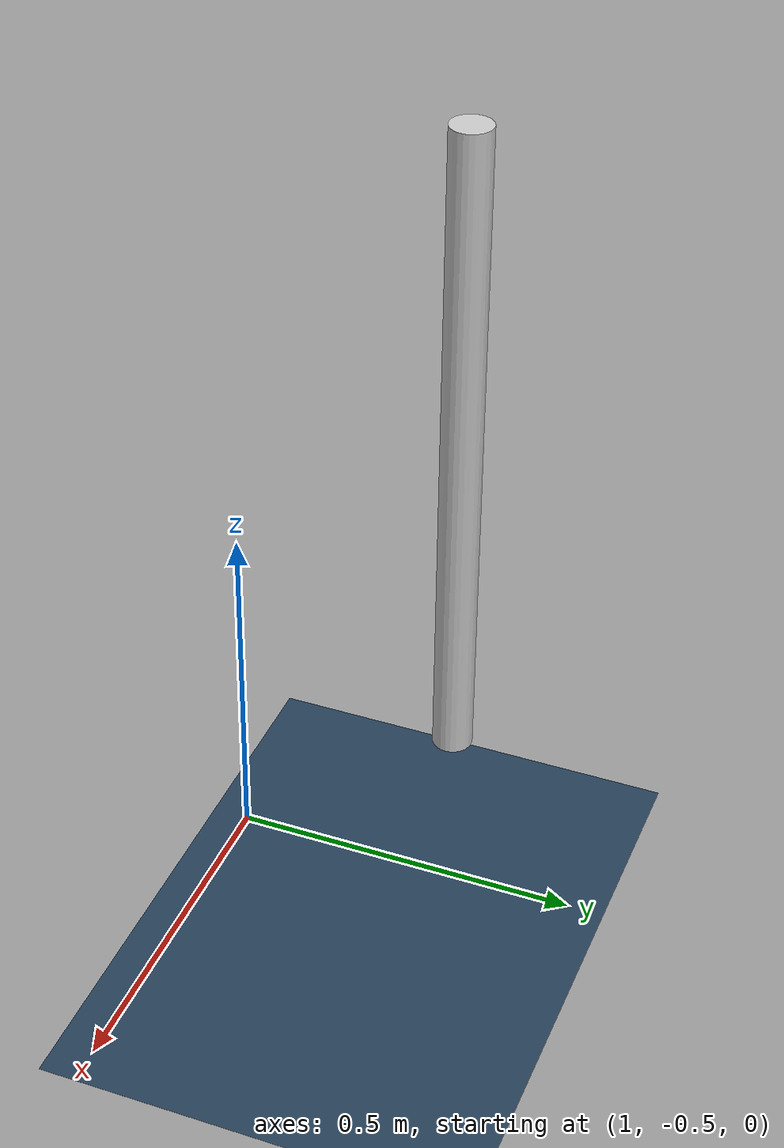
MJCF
<mujoco model="exoskeleton scene">
  <option gravity="0 0 -9.81" />
  <size nconmax="200" njmax="200" nstack="500000"/>
  <statistic center="0 0 1" extent="1.8"/>

  <visual>
    <headlight diffuse="0.6 0.6 0.6" ambient="0.3 0.3 0.3" specular="0 0 0"/>
    <rgba haze="0.15 0.25 0.35 1"/>
    <global azimuth="160" elevation="-20"/>
  </visual>

  <asset>
    <texture type="skybox" builtin="gradient" rgb1="0.3 0.5 0.7" rgb2="0 0 0" width="512" height="3072"/>
    <texture type="2d" name="groundplane" builtin="checker" mark="edge" rgb1="0.2 0.3 0.4" rgb2="0.1 0.2 0.3"
      markrgb="0.8 0.8 0.8" width="300" height="300"/>
    <material name="groundplane" texture="groundplane" texuniform="true" texrepeat="5 5" reflectance="0.2"/>
  </asset>

  <worldbody>
    <light pos="0 0 3.5" dir="0 0 -1" directional="true"/>
    <!-- 添加 friction 属性来增加地板的摩擦力 -->
    <!-- 第一个地面 -->
    <geom name="floor1" pos="0 0 0" size="10 10 0.05" type="plane" material="groundplane" friction="0.1 0.1 0.1"/>

    <!-- 左侧扶手 - 调整立杆位置和高度 -->
    <body name="left_handrail" pos="0 0 0">
      <inertial pos="-0.12833 -0.00625431 0.0426701" quat="0.0023652 0.77128 0.0526397 0.634312" mass="2.2828" diaginertia="0.0185807 0.0176686 0.00286415"/>
      <joint name="Link_joint" pos="0.8 -0.25 1.075" axis="0 1 0" range="-180 180" actuatorfrcrange="-1000000 1000000"/>
      <geom name="left_handrail_post1" type="cylinder" size="0.03" fromto="0.8 -0.25 0.075 0.8 -0.25 1.075" rgba="0.8 0.8 0.8 1"/>
    </body>

  </worldbody>
    <actuator>
        <!-- position controllers -->
        <position name='pos_Link_joint' joint="Link_joint" kp='5000' forcelimited="true" forcerange="-500 500"/>
        <!--velocity controllers-->
        <velocity name='vel_Link_joint' joint="Link_joint" kv='100' forcelimited="true" forcerange="-500 500"/>

        <!--torque controllers-->
        <motor name='trq_Link_joint' joint="Link_joint" gear='1' forcelimited="true" forcerange="-500 500"/>

        <!-- The torque controllers of Upper body joint -->
    </actuator>

    <sensor>
        <!--joint position sensors-->

        <jointpos  name="pos_Link_joint" joint="Link_joint"/>

        <!--joint velocity sensors-->

        <jointvel  name="vel_Link_joint" joint="Link_joint"/>

        <!--actuator torque sensors, note that these sensors are not for joints -->

    </sensor>

</mujoco>
